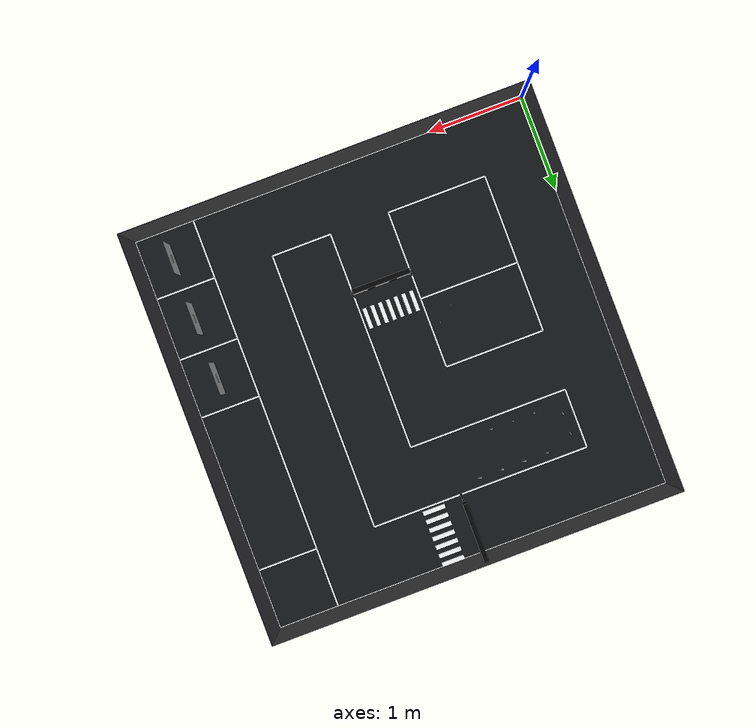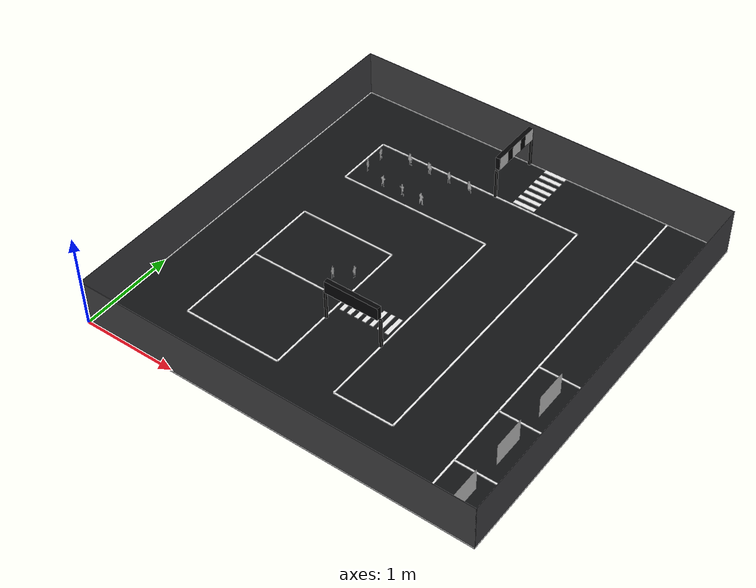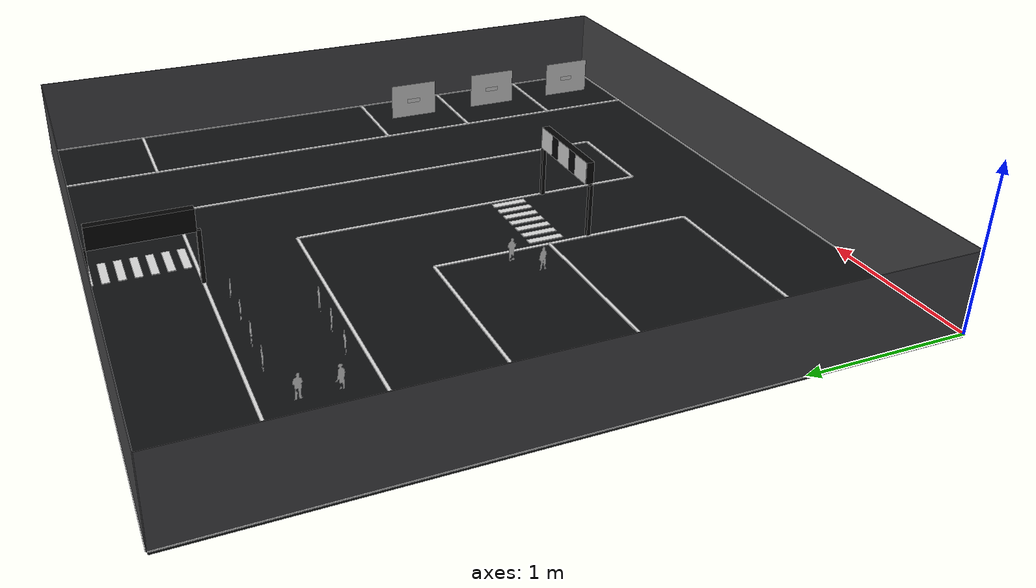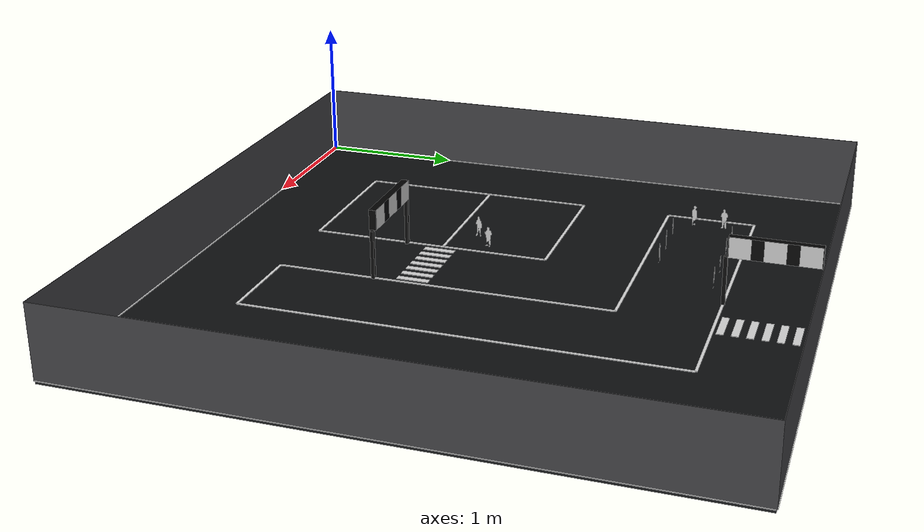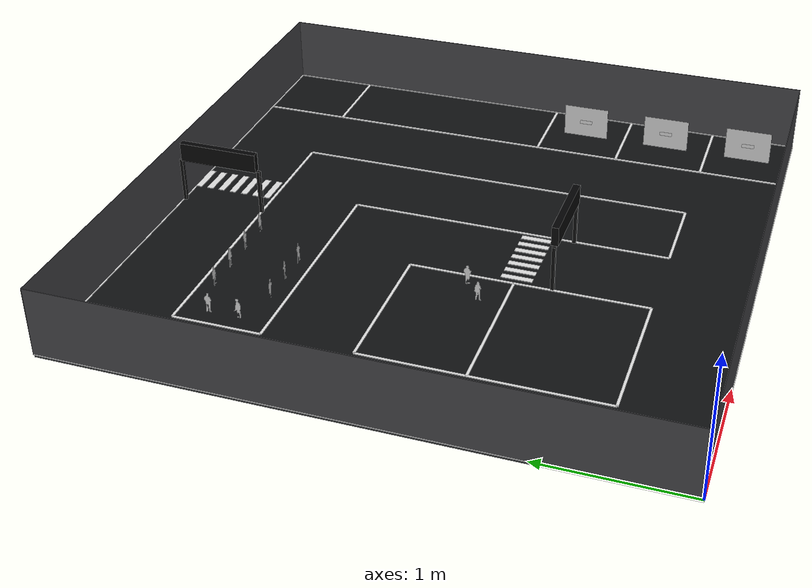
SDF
<sdf version="1.10">
 <world name="smart_community_semifinal_v8">
  <physics name="physics" type="ignored">
   <max_step_size>0.002</max_step_size>
   <real_time_factor>1.0</real_time_factor>
  </physics>
  <plugin filename="gz-sim-physics-system" name="gz::sim::systems::Physics"/>
  <plugin filename="gz-sim-sensors-system" name="gz::sim::systems::Sensors"/>
  <plugin filename="gz-sim-user-commands-system" name="gz::sim::systems::UserCommands"/>
  <plugin filename="gz-sim-scene-broadcaster-system" name="gz::sim::systems::SceneBroadcaster"/>
  <light type="directional" name="sun">
   <pose>0 0 10 0 0 0</pose>
   <diffuse>0.86 0.86 0.86 1</diffuse>
   <specular>0.18 0.18 0.18 1</specular>
   <direction>-0.35 0.25 -1</direction>
  </light>
  <model name="ground">
   <static>true</static>
   <pose>2.1000 2.1000 -0.0100 0 0 0</pose>
   <link name="link">
    <collision name="collision"><geometry><box><size>4.2000 4.2000 0.0200</size></box></geometry></collision>
    <visual name="visual">
     <geometry><box><size>4.2000 4.2000 0.0200</size></box></geometry>
     <material><ambient>0.075 0.08 0.085 1</ambient><diffuse>0.075 0.08 0.085 1</diffuse></material>
    </visual>
   </link>
  </model>
  <model name="wall_outer_bottom">
   <static>true</static>
   <pose>2.1000 -0.0025 0.2500 0 0 0</pose>
   <link name="link">
    <collision name="collision"><geometry><box><size>4.2100 0.0050 0.5000</size></box></geometry></collision>
    <visual name="visual">
     <geometry><box><size>4.2100 0.0050 0.5000</size></box></geometry>
     <material><ambient>0.23 0.23 0.24 1</ambient><diffuse>0.23 0.23 0.24 1</diffuse></material>
    </visual>
   </link>
  </model>
  <model name="wall_outer_top">
   <static>true</static>
   <pose>2.1000 4.2025 0.2500 0 0 0</pose>
   <link name="link">
    <collision name="collision"><geometry><box><size>4.2100 0.0050 0.5000</size></box></geometry></collision>
    <visual name="visual">
     <geometry><box><size>4.2100 0.0050 0.5000</size></box></geometry>
     <material><ambient>0.23 0.23 0.24 1</ambient><diffuse>0.23 0.23 0.24 1</diffuse></material>
    </visual>
   </link>
  </model>
  <model name="wall_outer_left">
   <static>true</static>
   <pose>-0.0025 2.1000 0.2500 0 0 0</pose>
   <link name="link">
    <collision name="collision"><geometry><box><size>0.0050 4.2100 0.5000</size></box></geometry></collision>
    <visual name="visual">
     <geometry><box><size>0.0050 4.2100 0.5000</size></box></geometry>
     <material><ambient>0.23 0.23 0.24 1</ambient><diffuse>0.23 0.23 0.24 1</diffuse></material>
    </visual>
   </link>
  </model>
  <model name="wall_outer_right">
   <static>true</static>
   <pose>4.2025 2.1000 0.2500 0 0 0</pose>
   <link name="link">
    <collision name="collision"><geometry><box><size>0.0050 4.2100 0.5000</size></box></geometry></collision>
    <visual name="visual">
     <geometry><box><size>0.0050 4.2100 0.5000</size></box></geometry>
     <material><ambient>0.23 0.23 0.24 1</ambient><diffuse>0.23 0.23 0.24 1</diffuse></material>
    </visual>
   </link>
  </model>
  <model name="line_outer_bottom">
   <static>true</static>
   <pose>2.1000 0.0000 0.0030 0 0 0</pose>
   <link name="link">
    <visual name="visual">
     <geometry><box><size>4.2000 0.0180 0.0040</size></box></geometry>
     <material><ambient>0.95 0.95 0.95 1</ambient><diffuse>0.95 0.95 0.95 1</diffuse></material>
    </visual>
   </link>
  </model>
  <model name="line_outer_top">
   <static>true</static>
   <pose>2.1000 4.2000 0.0030 0 0 0</pose>
   <link name="link">
    <visual name="visual">
     <geometry><box><size>4.2000 0.0180 0.0040</size></box></geometry>
     <material><ambient>0.95 0.95 0.95 1</ambient><diffuse>0.95 0.95 0.95 1</diffuse></material>
    </visual>
   </link>
  </model>
  <model name="line_outer_left">
   <static>true</static>
   <pose>0.0000 2.1000 0.0030 0 0 0</pose>
   <link name="link">
    <visual name="visual">
     <geometry><box><size>0.0180 4.2000 0.0040</size></box></geometry>
     <material><ambient>0.95 0.95 0.95 1</ambient><diffuse>0.95 0.95 0.95 1</diffuse></material>
    </visual>
   </link>
  </model>
  <model name="line_outer_right">
   <static>true</static>
   <pose>4.2000 2.1000 0.0030 0 0 0</pose>
   <link name="link">
    <visual name="visual">
     <geometry><box><size>0.0180 4.2000 0.0040</size></box></geometry>
     <material><ambient>0.95 0.95 0.95 1</ambient><diffuse>0.95 0.95 0.95 1</diffuse></material>
    </visual>
   </link>
  </model>
  <model name="h_top_block">
   <static>true</static>
   <pose>1.7840 3.5720 0.0030 0 0 0</pose>
   <link name="link">
    <visual name="visual">
     <geometry><box><size>2.3120 0.0180 0.0040</size></box></geometry>
     <material><ambient>0.95 0.95 0.95 1</ambient><diffuse>0.95 0.95 0.95 1</diffuse></material>
    </visual>
   </link>
  </model>
  <model name="h_A_lower">
   <static>true</static>
   <pose>1.4680 2.9440 0.0030 0 0 0</pose>
   <link name="link">
    <visual name="visual">
     <geometry><box><size>1.6800 0.0180 0.0040</size></box></geometry>
     <material><ambient>0.95 0.95 0.95 1</ambient><diffuse>0.95 0.95 0.95 1</diffuse></material>
    </visual>
   </link>
  </model>
  <model name="h_B_top">
   <static>true</static>
   <pose>1.1540 2.3040 0.0030 0 0 0</pose>
   <link name="link">
    <visual name="visual">
     <geometry><box><size>1.0520 0.0180 0.0040</size></box></geometry>
     <material><ambient>0.95 0.95 0.95 1</ambient><diffuse>0.95 0.95 0.95 1</diffuse></material>
    </visual>
   </link>
  </model>
  <model name="h_B_split">
   <static>true</static>
   <pose>1.1540 1.5630 0.0030 0 0 0</pose>
   <link name="link">
    <visual name="visual">
     <geometry><box><size>1.0520 0.0180 0.0040</size></box></geometry>
     <material><ambient>0.95 0.95 0.95 1</ambient><diffuse>0.95 0.95 0.95 1</diffuse></material>
    </visual>
   </link>
  </model>
  <model name="h_B_bottom">
   <static>true</static>
   <pose>1.1540 0.6240 0.0030 0 0 0</pose>
   <link name="link">
    <visual name="visual">
     <geometry><box><size>1.0520 0.0180 0.0040</size></box></geometry>
     <material><ambient>0.95 0.95 0.95 1</ambient><diffuse>0.95 0.95 0.95 1</diffuse></material>
    </visual>
   </link>
  </model>
  <model name="h_center_bottom">
   <static>true</static>
   <pose>2.6240 0.6240 0.0030 0 0 0</pose>
   <link name="link">
    <visual name="visual">
     <geometry><box><size>0.6320 0.0180 0.0040</size></box></geometry>
     <material><ambient>0.95 0.95 0.95 1</ambient><diffuse>0.95 0.95 0.95 1</diffuse></material>
    </visual>
   </link>
  </model>
  <model name="h_parking_top">
   <static>true</static>
   <pose>3.8840 3.5720 0.0030 0 0 0</pose>
   <link name="link">
    <visual name="visual">
     <geometry><box><size>0.6320 0.0180 0.0040</size></box></geometry>
     <material><ambient>0.95 0.95 0.95 1</ambient><diffuse>0.95 0.95 0.95 1</diffuse></material>
    </visual>
   </link>
  </model>
  <model name="h_parking_3top">
   <static>true</static>
   <pose>3.8840 1.9120 0.0030 0 0 0</pose>
   <link name="link">
    <visual name="visual">
     <geometry><box><size>0.6320 0.0180 0.0040</size></box></geometry>
     <material><ambient>0.95 0.95 0.95 1</ambient><diffuse>0.95 0.95 0.95 1</diffuse></material>
    </visual>
   </link>
  </model>
  <model name="h_parking_2top">
   <static>true</static>
   <pose>3.8840 1.2850 0.0030 0 0 0</pose>
   <link name="link">
    <visual name="visual">
     <geometry><box><size>0.6320 0.0180 0.0040</size></box></geometry>
     <material><ambient>0.95 0.95 0.95 1</ambient><diffuse>0.95 0.95 0.95 1</diffuse></material>
    </visual>
   </link>
  </model>
  <model name="h_parking_1top">
   <static>true</static>
   <pose>3.8840 0.6240 0.0030 0 0 0</pose>
   <link name="link">
    <visual name="visual">
     <geometry><box><size>0.6320 0.0180 0.0040</size></box></geometry>
     <material><ambient>0.95 0.95 0.95 1</ambient><diffuse>0.95 0.95 0.95 1</diffuse></material>
    </visual>
   </link>
  </model>
  <model name="v_A_left">
   <static>true</static>
   <pose>0.6280 3.2580 0.0030 0 0 0</pose>
   <link name="link">
    <visual name="visual">
     <geometry><box><size>0.0180 0.6280 0.0040</size></box></geometry>
     <material><ambient>0.95 0.95 0.95 1</ambient><diffuse>0.95 0.95 0.95 1</diffuse></material>
    </visual>
   </link>
  </model>
  <model name="v_B_left">
   <static>true</static>
   <pose>0.6280 1.4640 0.0030 0 0 0</pose>
   <link name="link">
    <visual name="visual">
     <geometry><box><size>0.0180 1.6800 0.0040</size></box></geometry>
     <material><ambient>0.95 0.95 0.95 1</ambient><diffuse>0.95 0.95 0.95 1</diffuse></material>
    </visual>
   </link>
  </model>
  <model name="v_B_right">
   <static>true</static>
   <pose>1.6800 1.4640 0.0030 0 0 0</pose>
   <link name="link">
    <visual name="visual">
     <geometry><box><size>0.0180 1.6800 0.0040</size></box></geometry>
     <material><ambient>0.95 0.95 0.95 1</ambient><diffuse>0.95 0.95 0.95 1</diffuse></material>
    </visual>
   </link>
  </model>
  <model name="v_center_left">
   <static>true</static>
   <pose>2.3080 1.7840 0.0030 0 0 0</pose>
   <link name="link">
    <visual name="visual">
     <geometry><box><size>0.0180 2.3200 0.0040</size></box></geometry>
     <material><ambient>0.95 0.95 0.95 1</ambient><diffuse>0.95 0.95 0.95 1</diffuse></material>
    </visual>
   </link>
  </model>
  <model name="v_center_right">
   <static>true</static>
   <pose>2.9400 2.0980 0.0030 0 0 0</pose>
   <link name="link">
    <visual name="visual">
     <geometry><box><size>0.0180 2.9480 0.0040</size></box></geometry>
     <material><ambient>0.95 0.95 0.95 1</ambient><diffuse>0.95 0.95 0.95 1</diffuse></material>
    </visual>
   </link>
  </model>
  <model name="v_parking_left">
   <static>true</static>
   <pose>3.5680 2.1000 0.0030 0 0 0</pose>
   <link name="link">
    <visual name="visual">
     <geometry><box><size>0.0180 4.2000 0.0040</size></box></geometry>
     <material><ambient>0.95 0.95 0.95 1</ambient><diffuse>0.95 0.95 0.95 1</diffuse></material>
    </visual>
   </link>
  </model>
  <model name="crosswalk_top_0">
   <static>true</static>
   <pose>2.3100 3.6231 0.0040 0 0 0</pose>
   <link name="link">
    <visual name="visual">
     <geometry><box><size>0.2400 0.0462 0.0040</size></box></geometry>
     <material><ambient>0.95 0.95 0.95 1</ambient><diffuse>0.95 0.95 0.95 1</diffuse></material>
    </visual>
   </link>
  </model>
  <model name="crosswalk_top_1">
   <static>true</static>
   <pose>2.3100 3.7154 0.0040 0 0 0</pose>
   <link name="link">
    <visual name="visual">
     <geometry><box><size>0.2400 0.0462 0.0040</size></box></geometry>
     <material><ambient>0.95 0.95 0.95 1</ambient><diffuse>0.95 0.95 0.95 1</diffuse></material>
    </visual>
   </link>
  </model>
  <model name="crosswalk_top_2">
   <static>true</static>
   <pose>2.3100 3.8077 0.0040 0 0 0</pose>
   <link name="link">
    <visual name="visual">
     <geometry><box><size>0.2400 0.0462 0.0040</size></box></geometry>
     <material><ambient>0.95 0.95 0.95 1</ambient><diffuse>0.95 0.95 0.95 1</diffuse></material>
    </visual>
   </link>
  </model>
  <model name="crosswalk_top_3">
   <static>true</static>
   <pose>2.3100 3.9000 0.0040 0 0 0</pose>
   <link name="link">
    <visual name="visual">
     <geometry><box><size>0.2400 0.0462 0.0040</size></box></geometry>
     <material><ambient>0.95 0.95 0.95 1</ambient><diffuse>0.95 0.95 0.95 1</diffuse></material>
    </visual>
   </link>
  </model>
  <model name="crosswalk_top_4">
   <static>true</static>
   <pose>2.3100 3.9923 0.0040 0 0 0</pose>
   <link name="link">
    <visual name="visual">
     <geometry><box><size>0.2400 0.0462 0.0040</size></box></geometry>
     <material><ambient>0.95 0.95 0.95 1</ambient><diffuse>0.95 0.95 0.95 1</diffuse></material>
    </visual>
   </link>
  </model>
  <model name="crosswalk_top_5">
   <static>true</static>
   <pose>2.3100 4.0846 0.0040 0 0 0</pose>
   <link name="link">
    <visual name="visual">
     <geometry><box><size>0.2400 0.0462 0.0040</size></box></geometry>
     <material><ambient>0.95 0.95 0.95 1</ambient><diffuse>0.95 0.95 0.95 1</diffuse></material>
    </visual>
   </link>
  </model>
  <model name="crosswalk_top_6">
   <static>true</static>
   <pose>2.3100 4.1769 0.0040 0 0 0</pose>
   <link name="link">
    <visual name="visual">
     <geometry><box><size>0.2400 0.0462 0.0040</size></box></geometry>
     <material><ambient>0.95 0.95 0.95 1</ambient><diffuse>0.95 0.95 0.95 1</diffuse></material>
    </visual>
   </link>
  </model>
  <model name="crosswalk_mid_0">
   <static>true</static>
   <pose>1.7462 1.5600 0.0040 0 0 0</pose>
   <link name="link">
    <visual name="visual">
     <geometry><box><size>0.0423 0.2200 0.0040</size></box></geometry>
     <material><ambient>0.95 0.95 0.95 1</ambient><diffuse>0.95 0.95 0.95 1</diffuse></material>
    </visual>
   </link>
  </model>
  <model name="crosswalk_mid_1">
   <static>true</static>
   <pose>1.8308 1.5600 0.0040 0 0 0</pose>
   <link name="link">
    <visual name="visual">
     <geometry><box><size>0.0423 0.2200 0.0040</size></box></geometry>
     <material><ambient>0.95 0.95 0.95 1</ambient><diffuse>0.95 0.95 0.95 1</diffuse></material>
    </visual>
   </link>
  </model>
  <model name="crosswalk_mid_2">
   <static>true</static>
   <pose>1.9154 1.5600 0.0040 0 0 0</pose>
   <link name="link">
    <visual name="visual">
     <geometry><box><size>0.0423 0.2200 0.0040</size></box></geometry>
     <material><ambient>0.95 0.95 0.95 1</ambient><diffuse>0.95 0.95 0.95 1</diffuse></material>
    </visual>
   </link>
  </model>
  <model name="crosswalk_mid_3">
   <static>true</static>
   <pose>2.0000 1.5600 0.0040 0 0 0</pose>
   <link name="link">
    <visual name="visual">
     <geometry><box><size>0.0423 0.2200 0.0040</size></box></geometry>
     <material><ambient>0.95 0.95 0.95 1</ambient><diffuse>0.95 0.95 0.95 1</diffuse></material>
    </visual>
   </link>
  </model>
  <model name="crosswalk_mid_4">
   <static>true</static>
   <pose>2.0846 1.5600 0.0040 0 0 0</pose>
   <link name="link">
    <visual name="visual">
     <geometry><box><size>0.0423 0.2200 0.0040</size></box></geometry>
     <material><ambient>0.95 0.95 0.95 1</ambient><diffuse>0.95 0.95 0.95 1</diffuse></material>
    </visual>
   </link>
  </model>
  <model name="crosswalk_mid_5">
   <static>true</static>
   <pose>2.1692 1.5600 0.0040 0 0 0</pose>
   <link name="link">
    <visual name="visual">
     <geometry><box><size>0.0423 0.2200 0.0040</size></box></geometry>
     <material><ambient>0.95 0.95 0.95 1</ambient><diffuse>0.95 0.95 0.95 1</diffuse></material>
    </visual>
   </link>
  </model>
  <model name="crosswalk_mid_6">
   <static>true</static>
   <pose>2.2538 1.5600 0.0040 0 0 0</pose>
   <link name="link">
    <visual name="visual">
     <geometry><box><size>0.0423 0.2200 0.0040</size></box></geometry>
     <material><ambient>0.95 0.95 0.95 1</ambient><diffuse>0.95 0.95 0.95 1</diffuse></material>
    </visual>
   </link>
  </model>
  <include>
   <uri>model://community_person_01</uri>
   <name>A_C01</name>
   <pose>0.750000 3.160000 0.000000 0 0 0.000000</pose>
  </include>
  <include>
   <uri>model://community_person_02</uri>
   <name>A_C02</name>
   <pose>0.750000 3.370000 0.000000 0 0 0.000000</pose>
  </include>
  <include>
   <uri>model://community_person_03</uri>
   <name>A_C03</name>
   <pose>1.020000 3.050000 0.000000 0 0 1.570796</pose>
  </include>
  <include>
   <uri>model://community_person_04</uri>
   <name>A_C04</name>
   <pose>1.250000 3.050000 0.000000 0 0 1.570796</pose>
  </include>
  <include>
   <uri>model://noncommunity_person_F1</uri>
   <name>A_F1</name>
   <pose>1.480000 3.050000 0.000000 0 0 1.570796</pose>
  </include>
  <include>
   <uri>model://community_person_05</uri>
   <name>A_C05</name>
   <pose>1.040000 3.470000 0.000000 0 0 -1.570796</pose>
  </include>
  <include>
   <uri>model://community_person_06</uri>
   <name>A_C06</name>
   <pose>1.280000 3.470000 0.000000 0 0 -1.570796</pose>
  </include>
  <include>
   <uri>model://community_person_07</uri>
   <name>A_C07</name>
   <pose>1.520000 3.470000 0.000000 0 0 -1.570796</pose>
  </include>
  <include>
   <uri>model://community_person_08</uri>
   <name>A_C08</name>
   <pose>1.760000 3.470000 0.000000 0 0 -1.570796</pose>
  </include>
  <include>
   <uri>model://community_person_15</uri>
   <name>B_C15</name>
   <pose>1.580000 1.860000 0.000000 0 0 3.141593</pose>
  </include>
  <include>
   <uri>model://noncommunity_person_F2</uri>
   <name>B_F2</name>
   <pose>1.420000 1.740000 0.000000 0 0 3.141593</pose>
  </include>
  <include>
   <uri>model://vehicle_background</uri>
   <name>vehicle_bg_3</name>
   <pose>3.880000 1.598000 0.000000 0 0 0.000000</pose>
  </include>
  <include>
   <uri>model://plate_3</uri>
   <name>plate_3_board</name>
   <pose>3.879650 1.598000 0.105000 0 0 0.000000</pose>
  </include>
  <include>
   <uri>model://vehicle_background</uri>
   <name>vehicle_bg_2</name>
   <pose>3.880000 0.956000 0.000000 0 0 0.000000</pose>
  </include>
  <include>
   <uri>model://plate_2</uri>
   <name>plate_2_board</name>
   <pose>3.879650 0.956000 0.105000 0 0 0.000000</pose>
  </include>
  <include>
   <uri>model://vehicle_background</uri>
   <name>vehicle_bg_1</name>
   <pose>3.880000 0.314000 0.000000 0 0 0.000000</pose>
  </include>
  <include>
   <uri>model://plate_1</uri>
   <name>plate_1_board</name>
   <pose>3.879650 0.314000 0.105000 0 0 0.000000</pose>
  </include>
  <include>
   <uri>model://traffic_light_green</uri>
   <name>traffic_light_top</name>
   <pose>2.000000 3.879000 0.000000 0 0 3.141593</pose>
  </include>
  <include>
   <uri>model://traffic_light_red</uri>
   <name>traffic_light_mid</name>
   <pose>2.000000 1.300000 0.000000 0 0 -1.570796</pose>
  </include>
 </world>
</sdf>

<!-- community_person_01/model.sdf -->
<sdf version="1.10">
  <model name="community_person_01">
    <static>true</static>
    <link name="board">
      <collision name="collision"><pose>0 0 0.075 0 0 0</pose><geometry><box><size>0.005 0.050 0.150</size></box></geometry></collision>
      <visual name="person"><geometry><mesh><uri>model://community_person_01/meshes/person.obj</uri><scale>1 0.761926822 1</scale></mesh></geometry></visual>
    </link>
  </model>
</sdf>

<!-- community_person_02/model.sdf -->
<sdf version="1.10">
  <model name="community_person_02">
    <static>true</static>
    <link name="board">
      <collision name="collision"><pose>0 0 0.075 0 0 0</pose><geometry><box><size>0.005 0.050 0.150</size></box></geometry></collision>
      <visual name="person"><geometry><mesh><uri>model://community_person_02/meshes/person.obj</uri><scale>1 0.922475185 1</scale></mesh></geometry></visual>
    </link>
  </model>
</sdf>

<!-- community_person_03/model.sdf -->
<sdf version="1.10">
  <model name="community_person_03">
    <static>true</static>
    <link name="board">
      <collision name="collision"><pose>0 0 0.075 0 0 0</pose><geometry><box><size>0.005 0.050 0.150</size></box></geometry></collision>
      <visual name="person"><geometry><mesh><uri>model://community_person_03/meshes/person.obj</uri><scale>1 0.712210130 1</scale></mesh></geometry></visual>
    </link>
  </model>
</sdf>

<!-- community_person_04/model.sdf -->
<sdf version="1.10">
  <model name="community_person_04">
    <static>true</static>
    <link name="board">
      <collision name="collision"><pose>0 0 0.075 0 0 0</pose><geometry><box><size>0.005 0.050 0.150</size></box></geometry></collision>
      <visual name="person"><geometry><mesh><uri>model://community_person_04/meshes/person.obj</uri><scale>1 0.711379222 1</scale></mesh></geometry></visual>
    </link>
  </model>
</sdf>

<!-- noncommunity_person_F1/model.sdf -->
<sdf version="1.10">
  <model name="noncommunity_person_F1">
    <static>true</static>
    <link name="board">
      <collision name="collision"><pose>0 0 0.075 0 0 0</pose><geometry><box><size>0.005 0.050 0.150</size></box></geometry></collision>
      <visual name="person"><geometry><mesh><uri>model://noncommunity_person_F1/meshes/person.obj</uri><scale>1 1.005510196 1</scale></mesh></geometry></visual>
    </link>
  </model>
</sdf>

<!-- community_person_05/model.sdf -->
<sdf version="1.10">
  <model name="community_person_05">
    <static>true</static>
    <link name="board">
      <collision name="collision"><pose>0 0 0.075 0 0 0</pose><geometry><box><size>0.005 0.050 0.150</size></box></geometry></collision>
      <visual name="person"><geometry><mesh><uri>model://community_person_05/meshes/person.obj</uri><scale>1 1.051524711 1</scale></mesh></geometry></visual>
    </link>
  </model>
</sdf>

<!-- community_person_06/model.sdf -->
<sdf version="1.10">
  <model name="community_person_06">
    <static>true</static>
    <link name="board">
      <collision name="collision"><pose>0 0 0.075 0 0 0</pose><geometry><box><size>0.005 0.050 0.150</size></box></geometry></collision>
      <visual name="person"><geometry><mesh><uri>model://community_person_06/meshes/person.obj</uri><scale>1 1.088044566 1</scale></mesh></geometry></visual>
    </link>
  </model>
</sdf>

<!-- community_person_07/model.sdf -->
<sdf version="1.10">
  <model name="community_person_07">
    <static>true</static>
    <link name="board">
      <collision name="collision"><pose>0 0 0.075 0 0 0</pose><geometry><box><size>0.005 0.050 0.150</size></box></geometry></collision>
      <visual name="person"><geometry><mesh><uri>model://community_person_07/meshes/person.obj</uri><scale>1 0.863528030 1</scale></mesh></geometry></visual>
    </link>
  </model>
</sdf>

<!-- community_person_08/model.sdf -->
<sdf version="1.10">
  <model name="community_person_08">
    <static>true</static>
    <link name="board">
      <collision name="collision"><pose>0 0 0.075 0 0 0</pose><geometry><box><size>0.005 0.050 0.150</size></box></geometry></collision>
      <visual name="person"><geometry><mesh><uri>model://community_person_08/meshes/person.obj</uri><scale>1 0.904748118 1</scale></mesh></geometry></visual>
    </link>
  </model>
</sdf>

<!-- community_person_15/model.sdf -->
<sdf version="1.10">
  <model name="community_person_15">
    <static>true</static>
    <link name="board">
      <collision name="collision"><pose>0 0 0.0750 0 0 0</pose><geometry><box><size>0.004 0.053443 0.150000</size></box></geometry></collision>
      <visual name="person"><geometry><mesh><uri>model://community_person_15/meshes/person.obj</uri></mesh></geometry></visual>
    </link>
  </model>
</sdf>

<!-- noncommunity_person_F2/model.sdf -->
<sdf version="1.10">
  <model name="noncommunity_person_F2">
    <static>true</static>
    <link name="board">
      <collision name="collision"><pose>0 0 0.075 0 0 0</pose><geometry><box><size>0.005 0.050 0.150</size></box></geometry></collision>
      <visual name="person"><geometry><mesh><uri>model://noncommunity_person_F2/meshes/person.obj</uri><scale>1 0.779253164 1</scale></mesh></geometry></visual>
    </link>
  </model>
</sdf>

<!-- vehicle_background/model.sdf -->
<sdf version="1.10"><model name="vehicle_background"><static>true</static><link name="board">
<collision name="backing_collision"><pose>0 0 0.125 0 0 0</pose><geometry><box><size>0.0005 0.345 0.25</size></box></geometry></collision>
<visual name="car_face"><pose>-0.00030 0 0 0 0 0</pose><geometry><mesh><uri>model://vehicle_background/meshes/car.obj</uri></mesh></geometry></visual>
</link></model></sdf>

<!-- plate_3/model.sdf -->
<sdf version="1.10"><model name="plate_3"><static>true</static><link name="plate">
<collision name="collision"><pose>0 0 0.015 0 0 0</pose><geometry><box><size>0.0001 0.095 0.030</size></box></geometry></collision>
<visual name="plate_face"><pose>-0.00006 0 0 0 0 0</pose><geometry><mesh><uri>model://plate_3/meshes/plate.obj</uri></mesh></geometry></visual>
</link></model></sdf>

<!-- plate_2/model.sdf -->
<sdf version="1.10"><model name="plate_2"><static>true</static><link name="plate">
<collision name="collision"><pose>0 0 0.015 0 0 0</pose><geometry><box><size>0.0001 0.095 0.030</size></box></geometry></collision>
<visual name="plate_face"><pose>-0.00006 0 0 0 0 0</pose><geometry><mesh><uri>model://plate_2/meshes/plate.obj</uri></mesh></geometry></visual>
</link></model></sdf>

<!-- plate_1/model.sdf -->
<sdf version="1.10"><model name="plate_1"><static>true</static><link name="plate">
<collision name="collision"><pose>0 0 0.015 0 0 0</pose><geometry><box><size>0.0001 0.095 0.030</size></box></geometry></collision>
<visual name="plate_face"><pose>-0.00006 0 0 0 0 0</pose><geometry><mesh><uri>model://plate_1/meshes/plate.obj</uri></mesh></geometry></visual>
</link></model></sdf>

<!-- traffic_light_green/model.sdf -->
<sdf version="1.10">
  <model name="traffic_light_green">
    <static>true</static>
    <link name="frame">
      <collision name="board_collision"><pose>0 0 0.4100 0 0 0</pose><geometry><box><size>0.050 0.59 0.14</size></box></geometry></collision>
      <visual name="board"><pose>0 0 0.4100 0 0 0</pose><geometry><box><size>0.050 0.59 0.14</size></box></geometry><material><ambient>0.015 0.015 0.018 1</ambient><diffuse>0.015 0.015 0.018 1</diffuse></material></visual>
      <collision name="left_post_collision"><pose>0 0.3075 0.17 0 0 0</pose><geometry><box><size>0.025 0.025 0.34</size></box></geometry></collision>
      <visual name="left_post"><pose>0 0.3075 0.17 0 0 0</pose><geometry><box><size>0.025 0.025 0.34</size></box></geometry><material><ambient>0.03 0.03 0.03 1</ambient><diffuse>0.03 0.03 0.03 1</diffuse></material></visual>
      <collision name="right_post_collision"><pose>0 -0.3075 0.17 0 0 0</pose><geometry><box><size>0.025 0.025 0.34</size></box></geometry></collision>
      <visual name="right_post"><pose>0 -0.3075 0.17 0 0 0</pose><geometry><box><size>0.025 0.025 0.34</size></box></geometry><material><ambient>0.03 0.03 0.03 1</ambient><diffuse>0.03 0.03 0.03 1</diffuse></material></visual>
      <visual name="red_face">
        <pose>-0.0260 0.2200 0.3400 0 0 0</pose>
        <geometry><mesh><uri>model://traffic_light_green/meshes/red.obj</uri></mesh></geometry>
      </visual>
      <visual name="yellow_face">
        <pose>-0.0260 0.0000 0.3400 0 0 0</pose>
        <geometry><mesh><uri>model://traffic_light_green/meshes/yellow.obj</uri></mesh></geometry>
      </visual>
      <visual name="green_face">
        <pose>-0.0260 -0.2200 0.3400 0 0 0</pose>
        <geometry><mesh><uri>model://traffic_light_green/meshes/green.obj</uri></mesh></geometry>
      </visual>
    </link>
  </model>
</sdf>

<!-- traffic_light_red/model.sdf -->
<sdf version="1.10">
  <model name="traffic_light_red">
    <static>true</static>
    <link name="frame">
      <collision name="board_collision"><pose>0 0 0.4100 0 0 0</pose><geometry><box><size>0.050 0.59 0.14</size></box></geometry></collision>
      <visual name="board"><pose>0 0 0.4100 0 0 0</pose><geometry><box><size>0.050 0.59 0.14</size></box></geometry><material><ambient>0.015 0.015 0.018 1</ambient><diffuse>0.015 0.015 0.018 1</diffuse></material></visual>
      <collision name="left_post_collision"><pose>0 0.3075 0.17 0 0 0</pose><geometry><box><size>0.025 0.025 0.34</size></box></geometry></collision>
      <visual name="left_post"><pose>0 0.3075 0.17 0 0 0</pose><geometry><box><size>0.025 0.025 0.34</size></box></geometry><material><ambient>0.03 0.03 0.03 1</ambient><diffuse>0.03 0.03 0.03 1</diffuse></material></visual>
      <collision name="right_post_collision"><pose>0 -0.3075 0.17 0 0 0</pose><geometry><box><size>0.025 0.025 0.34</size></box></geometry></collision>
      <visual name="right_post"><pose>0 -0.3075 0.17 0 0 0</pose><geometry><box><size>0.025 0.025 0.34</size></box></geometry><material><ambient>0.03 0.03 0.03 1</ambient><diffuse>0.03 0.03 0.03 1</diffuse></material></visual>
      <visual name="red_face">
        <pose>-0.0260 0.2200 0.3400 0 0 0</pose>
        <geometry><mesh><uri>model://traffic_light_red/meshes/red.obj</uri></mesh></geometry>
      </visual>
      <visual name="yellow_face">
        <pose>-0.0260 0.0000 0.3400 0 0 0</pose>
        <geometry><mesh><uri>model://traffic_light_red/meshes/yellow.obj</uri></mesh></geometry>
      </visual>
      <visual name="green_face">
        <pose>-0.0260 -0.2200 0.3400 0 0 0</pose>
        <geometry><mesh><uri>model://traffic_light_red/meshes/green.obj</uri></mesh></geometry>
      </visual>
    </link>
  </model>
</sdf>
